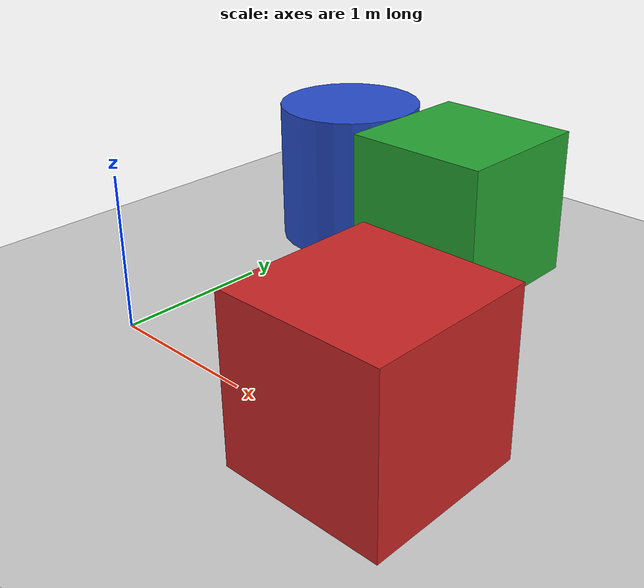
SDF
<?xml version="1.0"?>
<sdf version="1.4">
  <world name="default">
    <!-- A global light source -->
    <include>
      <uri>model://sun</uri>
    </include>

    <!-- A ground plane -->
    <include>
      <uri>model://ground_plane</uri>
    </include>

    <!-- Some objects for depth sensing -->
    <model name="box1">
      <pose>2 0 0.5 0 0 0</pose>
      <static>true</static>
      <link name="link">
        <collision name="collision">
          <geometry>
            <box>
              <size>1 1 1</size>
            </box>
          </geometry>
        </collision>
        <visual name="visual">
          <geometry>
            <box>
              <size>1 1 1</size>
            </box>
          </geometry>
          <material>
            <script>
              <name>Gazebo/Red</name>
            </script>
          </material>
        </visual>
      </link>
    </model>

    <model name="box2">
      <pose>1 2 0.5 0 0 0</pose>
      <static>true</static>
      <link name="link">
        <collision name="collision">
          <geometry>
            <box>
              <size>1 1 1</size>
            </box>
          </geometry>
        </collision>
        <visual name="visual">
          <geometry>
            <box>
              <size>1 1 1</size>
            </box>
          </geometry>
          <material>
            <script>
              <name>Gazebo/Green</name>
            </script>
          </material>
        </visual>
      </link>
    </model>

    <model name="cylinder1">
      <pose>0 2 0.5 0 0 0</pose>
      <static>true</static>
      <link name="link">
        <collision name="collision">
          <geometry>
            <cylinder>
              <radius>0.5</radius>
              <length>1</length>
            </cylinder>
          </geometry>
        </collision>
        <visual name="visual">
          <geometry>
            <cylinder>
              <radius>0.5</radius>
              <length>1</length>
            </cylinder>
          </geometry>
          <material>
            <script>
              <name>Gazebo/Blue</name>
            </script>
          </material>
        </visual>
      </link>
    </model>

  </world>
</sdf>
